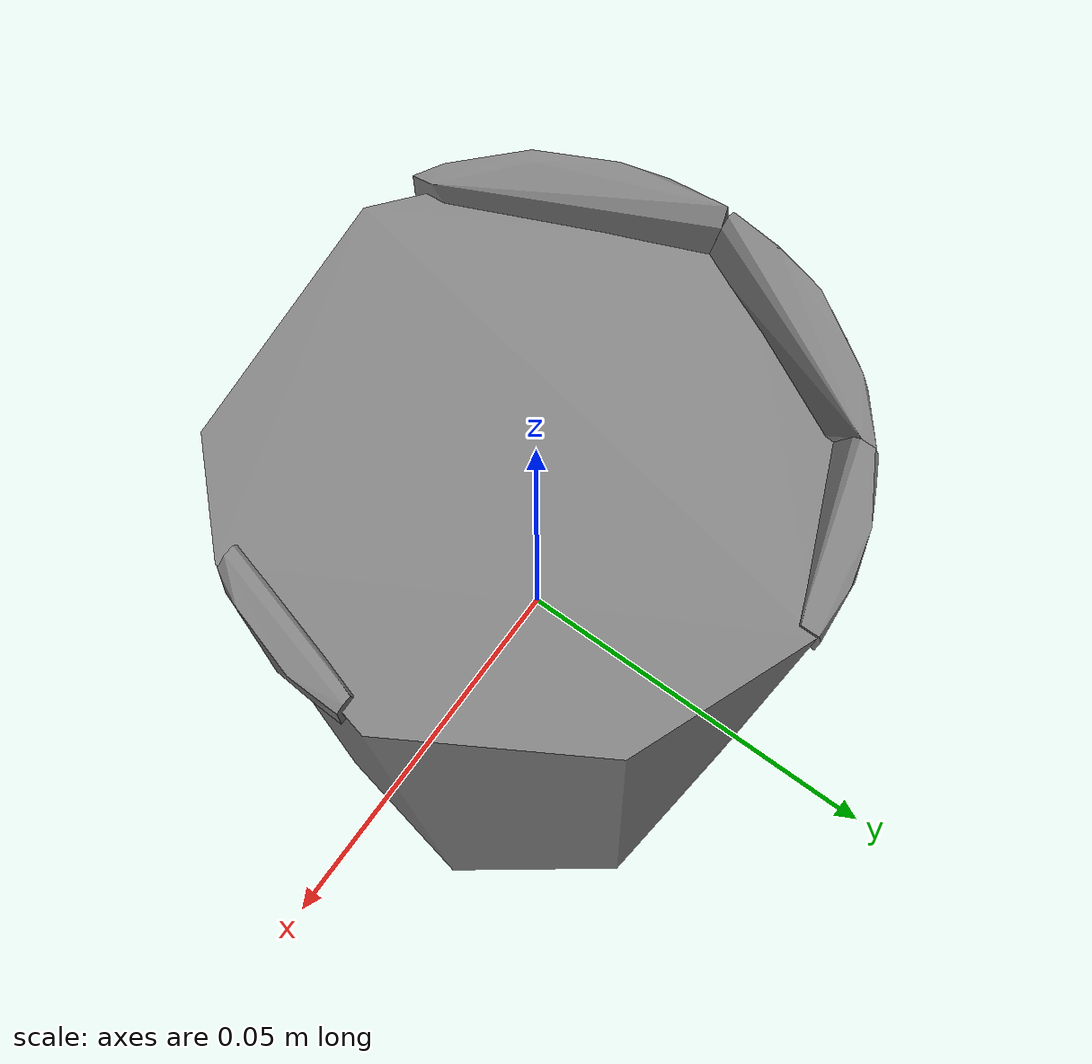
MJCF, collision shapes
<mujoco model="tomato_soup_can">
  <compiler angle="radian" />

  <asset>
    <mesh name="tomato_soup_can_visual_mesh" file="tomato_soup_can/textured.obj" />
    <mesh name="tomato_soup_can_collision_mesh_0" file="tomato_soup_can/textured_coacd_0.stl" />
    <mesh name="tomato_soup_can_collision_mesh_1" file="tomato_soup_can/textured_coacd_1.stl" />
    <mesh name="tomato_soup_can_collision_mesh_2" file="tomato_soup_can/textured_coacd_2.stl" />
    <mesh name="tomato_soup_can_collision_mesh_3" file="tomato_soup_can/textured_coacd_3.stl" />
    <mesh name="tomato_soup_can_collision_mesh_4" file="tomato_soup_can/textured_coacd_4.stl" />
    <texture name="tomato_soup_can_texture" type="2d" file="tomato_soup_can/texture_map.png" />
    <material name="tomato_soup_can_material" texture="tomato_soup_can_texture" />
  </asset>

  <worldbody>
    <body name="tomato_soup_can" pos="0 0 0" euler="0 0 0">
      <freejoint name="tomato_soup_can_joint" />
      <geom name="tomato_soup_can_visual_geom" type="mesh" mesh="tomato_soup_can_visual_mesh" material="tomato_soup_can_material" pos="-0.0 0.0 0.0" euler="0 0 0" contype="0" conaffinity="0" group="0" />
      <geom name="tomato_soup_can_collision_geom_0" type="mesh" mesh="tomato_soup_can_collision_mesh_0" pos="-0.0 0.0 0.0" euler="0 0 0" contype="1" conaffinity="1" group="3" />
      <geom name="tomato_soup_can_collision_geom_1" type="mesh" mesh="tomato_soup_can_collision_mesh_1" pos="-0.0 0.0 0.0" euler="0 0 0" contype="1" conaffinity="1" group="3" />
      <geom name="tomato_soup_can_collision_geom_2" type="mesh" mesh="tomato_soup_can_collision_mesh_2" pos="-0.0 0.0 0.0" euler="0 0 0" contype="1" conaffinity="1" group="3" />
      <geom name="tomato_soup_can_collision_geom_3" type="mesh" mesh="tomato_soup_can_collision_mesh_3" pos="-0.0 0.0 0.0" euler="0 0 0" contype="1" conaffinity="1" group="3" />
      <geom name="tomato_soup_can_collision_geom_4" type="mesh" mesh="tomato_soup_can_collision_mesh_4" pos="-0.0 0.0 0.0" euler="0 0 0" contype="1" conaffinity="1" group="3" />
      <inertial pos="0 0 0" euler="0 0 0" mass="0.349" diaginertia="0.001 0.001 0.001" />
    </body>
  </worldbody>
</mujoco>
